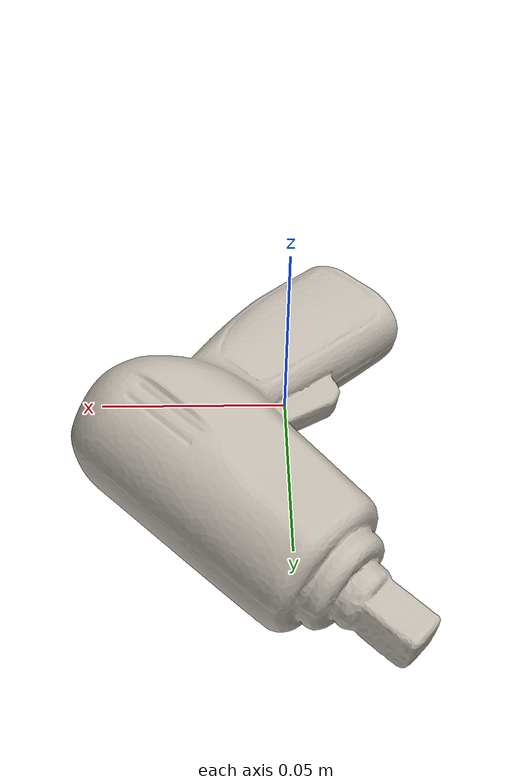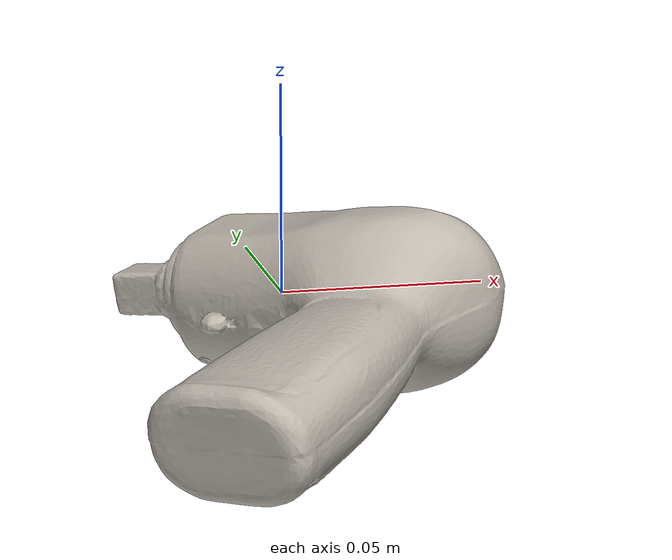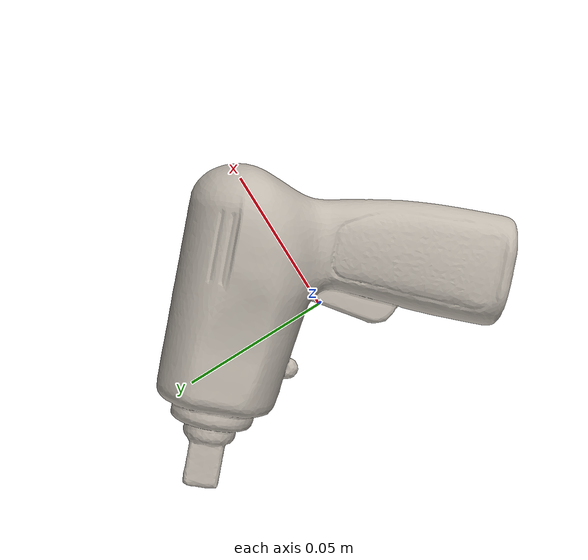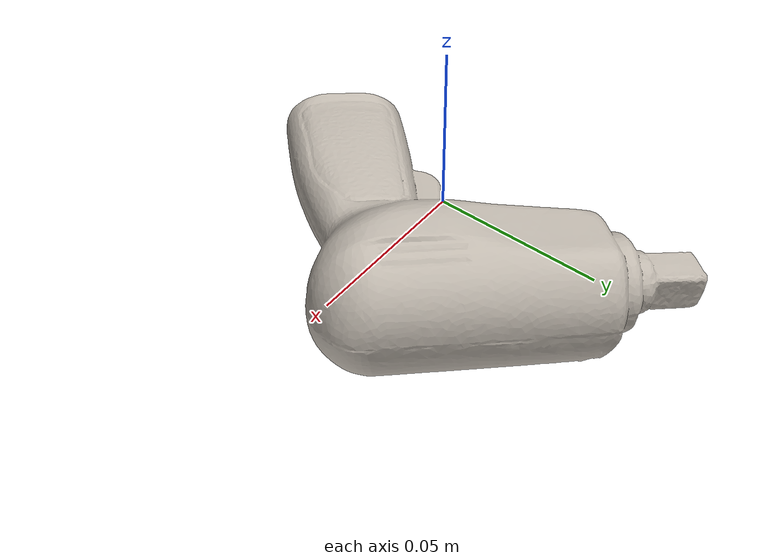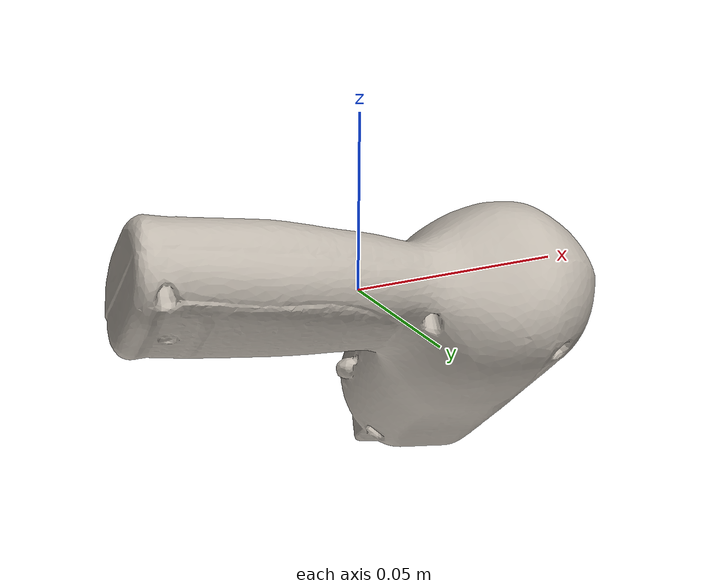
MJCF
<mujoco model="bread">
  <asset>
    <mesh file="nontextured.stl" name="obj_mesh" scale="0.8 0.8 0.8"/>
    <texture file="../../../../../textures/bread.png" type="2d" name="tex-bread" />
    <material name="bread" reflectance="0.7" texrepeat="15 15" texture="tex-bread" texuniform="true"/>
  </asset>
  <worldbody>
    <body>
      <body name="collision">
        <geom pos="0.0495995 -0.004380000000000002 -0.029246" mesh="obj_mesh" type="mesh" solimp="0.998 0.998 0.001" solref="0.001 1" density="50" friction="0.95 0.3 0.1"  material="bread" group="1" condim="4"/>
      </body>
      <body name="visual">
        <geom pos="0.0495995 -0.004380000000000002 -0.029246" mesh="obj_mesh" type="mesh" material="bread"  conaffinity="0" contype="0"  group="0" mass="0.0001"/>
        <geom pos="0.0495995 -0.004380000000000002 -0.029246" mesh="obj_mesh" type="mesh" material="bread"  conaffinity="0" contype="0"  group="1" mass="0.0001"/>
      </body>
      <site rgba="0 0 0 0" size="0.005" pos="0 0 -0.02964" name="bottom_site"/>
      <site rgba="0 0 0 0" size="0.005" pos="0 0 0.02964" name="top_site"/>
      <site rgba="0 0 0 0" size="0.005" pos="0.0601645 0.090839 0.02964" name="horizontal_radius_site"/>
    </body>
  </worldbody>
</mujoco>
